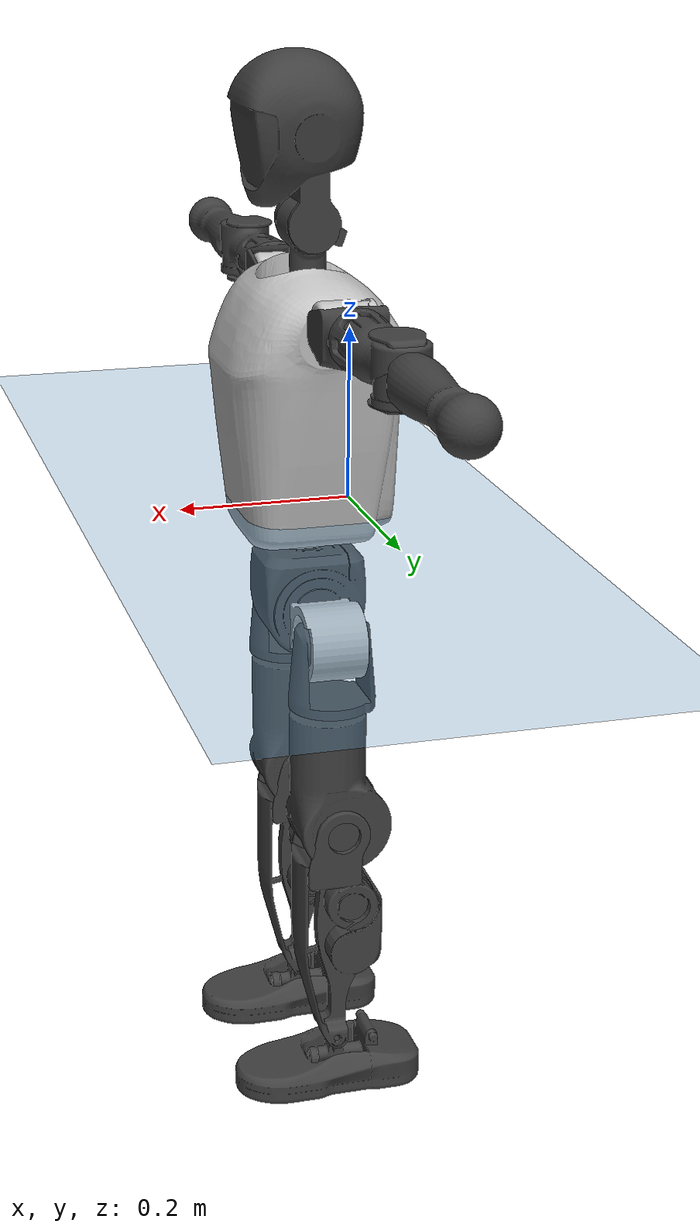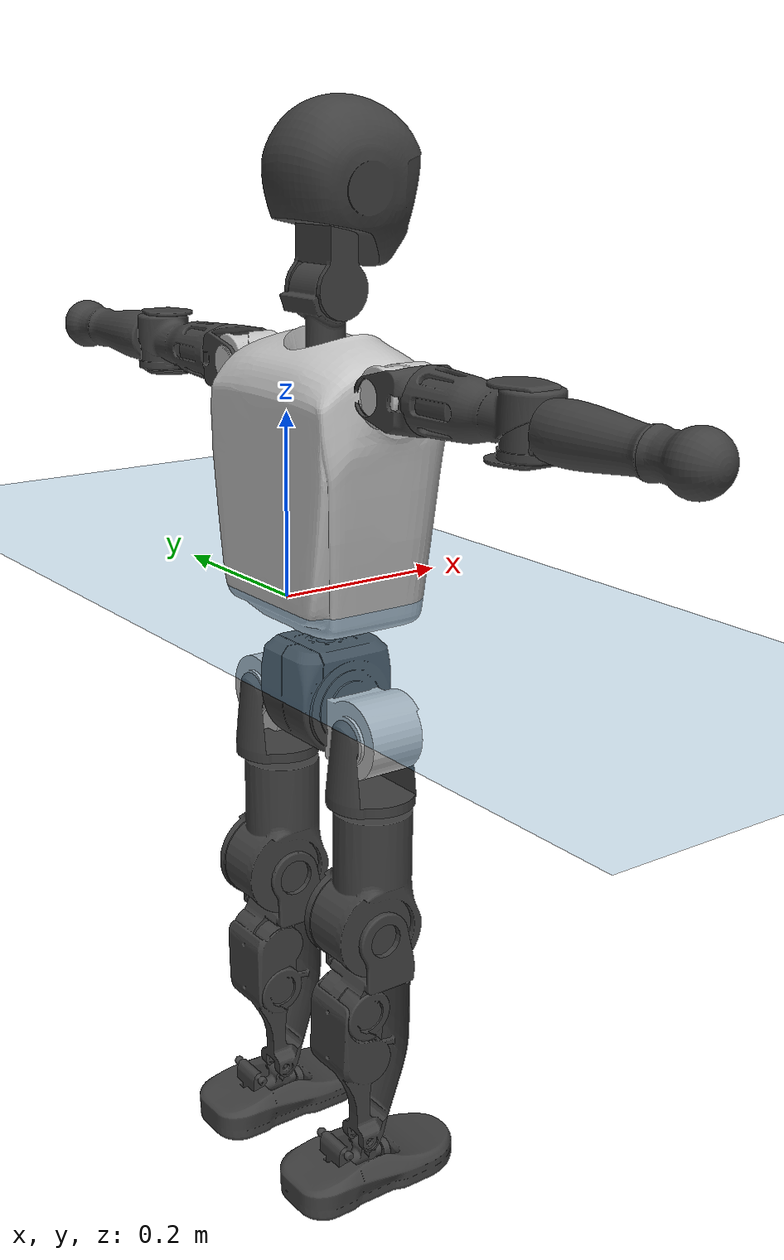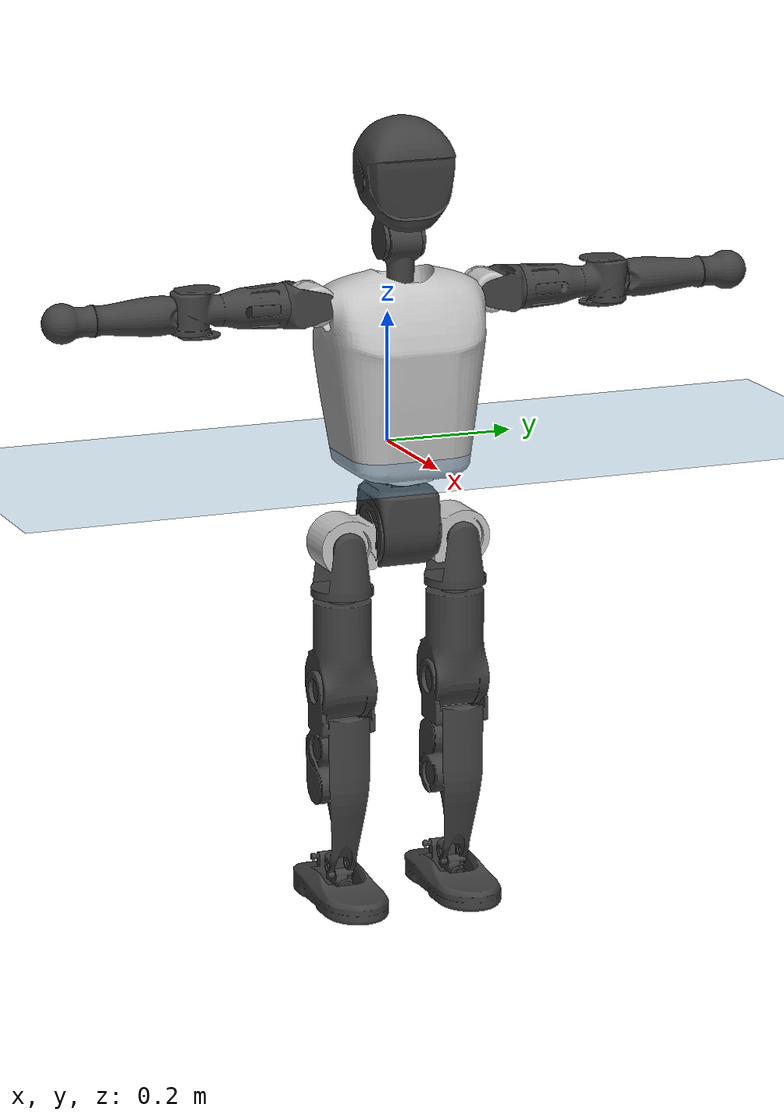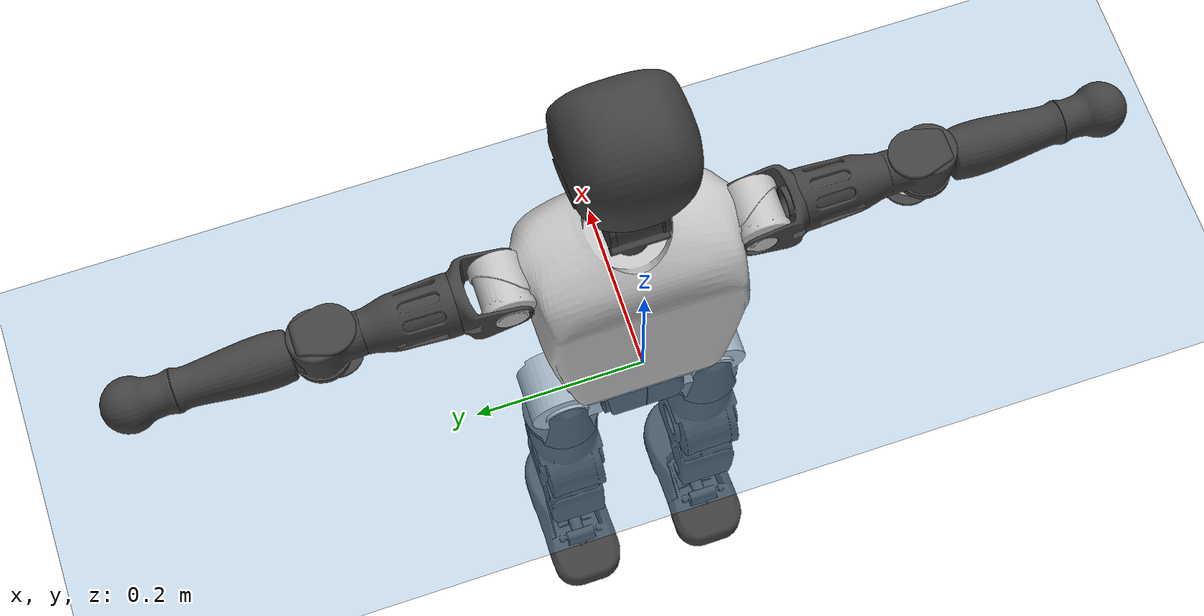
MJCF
<mujoco model="T1">
  <compiler angle="radian" assetdir="assets" balanceinertia="true" inertiafromgeom="false"/>

  <option timestep="0.005" density="1.2" viscosity="2e-05"/>

  <size nkey="1"/>

  <visual>
    <quality shadowsize="8192"/>
    <map shadowclip="0.5"/>
  </visual>

  <default>
    <default class="/">
      <joint armature="0.01" damping="0.01" frictionloss="0.1"/>
      <geom contype="0" conaffinity="0" group="1" solref="-1000 -80"/>
      <site size="0.01 0.005 0.005" group="5"/>
      <general forcelimited="true" biastype="affine" gainprm="25" biasprm="0 -25 -0.6"/>
      <default class="t1">
        <geom rgba="0.25 0.25 0.25 1"/>
        <default class="visual">
          <geom type="mesh" group="2"/>
        </default>
        <default class="collision">
          <geom group="3"/>
        </default>
        <default class="foot">
          <geom size="0.1115 0.05 0.015" type="box" condim="6" group="4" priority="1" solimp="0.015 1 0.015"/>
        </default>
        <default class="reward_collision_sphere">
          <geom group="5" rgba="1 0 0 1"/>
        </default>
      </default>
    </default>
  </default>

  <asset>
    <texture type="skybox" colorspace="auto" name="//unnamed_texture_0" builtin="gradient" rgb1="0.95 0.95 0.95" rgb2="0.95 0.95 0.95" width="100" height="600"/>
    <texture type="2d" colorspace="auto" name="texplane" builtin="checker" rgb1="0.345 0.575 0.748" rgb2="0.345 0.575 0.748" markrgb="1 1 1" width="512" height="512"/>
    <material name="MatPlane" class="/" texture="texplane" texuniform="true" texrepeat="2 2" specular="0.9"/>
    <mesh name="Trunk" class="/" file="Trunk.stl"/>
    <mesh name="H1" class="/" file="H1.stl"/>
    <mesh name="H2" class="/" file="H2.stl"/>
    <mesh name="AL1" class="/" file="AL1.stl"/>
    <mesh name="AL2" class="/" file="AL2.stl"/>
    <mesh name="AL3" class="/" file="AL3.stl"/>
    <mesh name="left_hand_link" class="/" file="left_hand_link.stl"/>
    <mesh name="AR1" class="/" file="AR1.stl"/>
    <mesh name="AR2" class="/" file="AR2.stl"/>
    <mesh name="AR3" class="/" file="AR3.stl"/>
    <mesh name="right_hand_link" class="/" file="right_hand_link.stl"/>
    <mesh name="Waist" class="/" file="Waist.stl"/>
    <mesh name="Hip_Pitch_Left" class="/" file="Hip_Pitch_Left.stl"/>
    <mesh name="Hip_Roll_Left" class="/" file="Hip_Roll_Left.stl"/>
    <mesh name="Hip_Yaw_Left" class="/" file="Hip_Yaw_Left.stl"/>
    <mesh name="Shank_Left" class="/" file="Shank_Left.stl"/>
    <mesh name="Ankle_Cross_Left" class="/" file="Ankle_Cross_Left.stl"/>
    <mesh name="left_foot_link" class="/" file="left_foot_link.stl"/>
    <mesh name="Hip_Pitch_Right" class="/" file="Hip_Pitch_Right.stl"/>
    <mesh name="Hip_Roll_Right" class="/" file="Hip_Roll_Right.stl"/>
    <mesh name="Hip_Yaw_Right" class="/" file="Hip_Yaw_Right.stl"/>
    <mesh name="Shank_Right" class="/" file="Shank_Right.stl"/>
    <mesh name="Ankle_Cross_Right" class="/" file="Ankle_Cross_Right.stl"/>
    <mesh name="right_foot_link" class="/" file="right_foot_link.stl"/>
  </asset>

  <worldbody>
    <geom name="floor" class="/" size="100 100 0.125" type="plane" group="0" material="MatPlane"/>
    <light name="toplight_shadow" class="/" pos="0 0 5" dir="0.0990148 0.0990148 -0.990148" type="directional" ambient="0.04 0.04 0.04" diffuse="0.55 0.55 0.55" specular="0.12 0.12 0.12"/>
    <light name="toplight_fill" class="/" pos="0 0 5" dir="0.0990148 0.0990148 -0.990148" type="directional" castshadow="false" ambient="0.04 0.04 0.04" diffuse="0.3 0.3 0.3" specular="0.08 0.08 0.08"/>
    <body name="trunk" childclass="t1" pos="-0.000146348 6.75054e-05 0.000621019" quat="1 -0.000194847 9.5534e-05 -0.000153956">
      <inertial pos="0.0424683 -0.00126465 0.11165" quat="0.99995 -0.00436449 -0.00899405 9.28198e-05" mass="8.57854" diaginertia="0.0268618 0.0398948 0.0716741"/>
      <joint name="//unnamed_joint_0" type="free" armature="0" damping="0" frictionloss="0"/>
      <geom name="//unnamed_geom_1" class="visual" rgba="0.76 0.76 0.76 1" mesh="Trunk"/>
      <geom name="//unnamed_geom_2" class="collision" size="0.0679695 0.090626 0.135939" pos="0.0469897 0 0.126931" type="box"/>
      <geom name="//unnamed_geom_3" class="reward_collision_sphere" size="0.10422" pos="0.0469897 0 0.105776"/>
      <geom name="//unnamed_geom_4" class="reward_collision_sphere" size="0.0135939" pos="0.0469897 0.0746184 0"/>
      <geom name="//unnamed_geom_5" class="reward_collision_sphere" size="0.0135939" pos="0.0469897 -0.0746184 0"/>
      <geom name="//unnamed_geom_6" class="reward_collision_sphere" size="0.0135939" pos="0.0469897 0.0939314 0.190396"/>
      <geom name="//unnamed_geom_7" class="reward_collision_sphere" size="0.0135939" pos="0.0469897 -0.0939314 0.190396"/>
      <site name="imu" pos="0.00969312 -0.0061897 -0.00495248" size="0.0090626"/>
      <camera name="track" pos="0 -1.75573 0" quat="0.707107 0.707107 0 0" mode="trackcom"/>
      <camera name="ego_camera" pos="0.0955457 0 0.444257" quat="-0.5 -0.5 0.5 0.5"/>
      <body name="H1" pos="0.0495101 0.000156487 0.256791" quat="1 -0.000195054 0.00035157 -7.56698e-05">
        <inertial pos="-0.00113801 -0.00129126 0.0606857" quat="0.765856 -0.0136802 0.00323011 0.642859" mass="0.33562" diaginertia="7.217e-05 0.000116705 0.00020206"/>
        <joint name="AAHead_yaw" pos="0 0 0" axis="-2.26887e-05 -0.000972334 1" stiffness="0.0044398" range="-1.58928 1.56303" armature="0.00895691" damping="0.00740469" frictionloss="0.0931578"/>
        <geom name="//unnamed_geom_8" class="visual" mesh="H1"/>
        <body name="H2" pos="-0.000664531 -0.00170782 0.0649308" quat="1 0.00016597 -2.48211e-05 -7.16368e-05">
          <inertial pos="0.0072228 0.00228342 0.103988" quat="0.98809 0.109076 -0.0772055 -0.0762888" mass="0.480583" diaginertia="0.00059213 0.00101287 0.00226988"/>
          <joint name="Head_pitch" pos="0 0 0" axis="0.00134854 -0.999998 0.00164529" range="-1.22456 0.347968" armature="0.0085468" damping="0.00680474" frictionloss="0.0901523"/>
          <geom name="//unnamed_geom_9" class="visual" mesh="H2"/>
          <geom name="//unnamed_geom_10" class="collision" size="0.0725008" pos="0.00783162 0 0.116353"/>
          <geom name="//unnamed_geom_11" class="reward_collision_sphere" size="0.0815634" pos="0.0156632 0 0.105776"/>
        </body>
      </body>
      <body name="AL1" pos="0.0462595 0.0943682 0.232549" quat="1 -0.000258502 0.000424943 -0.000249378">
        <inertial pos="-0.00168865 0.0383134 0.00146703" quat="0.503422 0.495978 -0.501743 0.498825" mass="0.394152" diaginertia="0.00040007 0.000672603 0.000381383"/>
        <joint name="Left_Shoulder_Pitch" pos="0 0 0" axis="0.00312551 0.999992 -0.00240296" range="-3.33523 1.22395" armature="0.00906846" damping="0.01212" frictionloss="0.0900328"/>
        <geom name="//unnamed_geom_12" class="visual" rgba="0.76 0.76 0.76 1" mesh="AL1"/>
        <body name="AL2" pos="-6.27645e-05 0.0438544 -0.000535024" quat="0.999999 -0.00078498 0.000111125 0.000780488">
          <inertial pos="0.00162324 0.0335071 -0.000611117" quat="0.487213 0.512582 -0.488956 0.51069" mass="0.124597" diaginertia="0.000119821 0.000184943 0.000238259"/>
          <joint name="Left_Shoulder_Roll" pos="0 0 0" axis="-0.999986 -0.0049396 0.00206448" range="-1.56833 1.73232" armature="0.00868582" damping="0.00114136" frictionloss="0.0948624"/>
          <geom name="//unnamed_geom_13" class="visual" mesh="AL2"/>
          <body name="AL3" pos="0.000157507 0.0551358 0.000332147" quat="1 -0.000610315 4.42086e-05 0.000661018">
            <inertial pos="0.000293838 0.0753225 -0.000442686" quat="0.705214 0.708984 0.00251927 0.00283324" mass="0.773263" diaginertia="0.0038473 0.00680787 0.000847241"/>
            <joint name="Left_Elbow_Pitch" pos="0 0 0" axis="3.12684e-05 -0.999999 0.00114401" range="-2.25479 2.26208" armature="0.00900823" damping="0.0120668" frictionloss="0.0891154"/>
            <geom name="//unnamed_geom_14" class="visual" mesh="AL3"/>
            <geom name="//unnamed_geom_15" class="collision" size="0.0271878 0.0679695" pos="0 0.0438932 0" quat="0.707105 0.707108 0 0" type="cylinder"/>
            <geom name="//unnamed_geom_16" class="reward_collision_sphere" size="0.0326254"/>
            <body name="left_hand_link" pos="0.000219498 0.131464 0.000694981" quat="1 0.000178618 -0.000301912 0.000711173">
              <inertial pos="-0.000332618 0.0971323 -0.000874719" quat="0.70704 0.707142 -0.00222596 -0.00622278" mass="0.237861" diaginertia="0.00231742 0.00411793 0.000280322"/>
              <joint name="Left_Elbow_Yaw" pos="0 0 0" axis="0.00856366 0.00202124 0.999961" range="-2.44525 0.0108645" armature="0.00917921" damping="0.0111629" frictionloss="0.0993682"/>
              <geom name="//unnamed_geom_17" class="visual" mesh="left_hand_link"/>
              <geom name="//unnamed_geom_18" class="collision" size="0.0271878 0.0792978" pos="0 0.114122 0" quat="0.707105 0.707108 0 0" type="cylinder"/>
              <geom name="//unnamed_geom_19" class="reward_collision_sphere" size="0.045313"/>
              <geom name="//unnamed_geom_20" class="reward_collision_sphere" size="0.0317191" pos="0 0.096565 0"/>
              <geom name="//unnamed_geom_21" class="reward_collision_sphere" size="0.0317191" pos="0 0.188741 0"/>
            </body>
          </body>
        </body>
      </body>
      <body name="AR1" pos="0.0434645 -0.0919644 0.231645" quat="1 -6.14665e-05 0.000405995 -3.90462e-05">
        <inertial pos="-0.000497513 -0.0394227 0.000412083" quat="0.504117 0.496292 -0.505105 0.494397" mass="0.387467" diaginertia="0.000400064 0.000672731 0.000385779"/>
        <joint name="Right_Shoulder_Pitch" pos="0 0 0" axis="-0.00182884 -0.999983 0.00561713" stiffness="0.0104373" range="-1.19351 3.30204" armature="0.00910996" damping="0.0128343" frictionloss="0.0896816"/>
        <geom name="//unnamed_geom_22" class="visual" rgba="0.76 0.76 0.76 1" mesh="AR1"/>
        <body name="AR2" pos="-0.00197885 -0.0396755 -3.63151e-05" quat="1 1.75477e-06 -4.53559e-05 0.00025656">
          <inertial pos="0.00333631 -0.0343312 0.000345487" quat="0.510138 0.490262 -0.510677 0.488479" mass="0.118194" diaginertia="0.000114677 0.000173393 0.000232578"/>
          <joint name="Right_Shoulder_Roll" pos="0 0 0" axis="-0.999984 0.00294772 -0.00485072" range="-1.75542 1.53971" armature="0.0089139" damping="0.00513582" frictionloss="0.0841496"/>
          <geom name="//unnamed_geom_23" class="visual" mesh="AR2"/>
          <body name="AR3" pos="0.000507079 -0.0512789 0.00087012" quat="1 3.05719e-05 1.21417e-05 -0.000222262">
            <inertial pos="-0.000465685 -0.0744919 0.000181357" quat="0.701127 0.713022 0.0044077 0.000976754" mass="0.769146" diaginertia="0.00383961 0.00667073 0.000828104"/>
            <joint name="Right_Elbow_Pitch" pos="0 0 0" axis="0.000967699 0.999999 -0.000723835" stiffness="0.00556058" range="-2.27295 2.27087" armature="0.00896637" damping="0.00633926" frictionloss="0.0982274"/>
            <geom name="//unnamed_geom_24" class="visual" mesh="AR3"/>
            <geom name="//unnamed_geom_25" class="collision" size="0.0271878 0.0679695" pos="0 -0.0438932 0" quat="0.707105 0.707108 0 0" type="cylinder"/>
            <geom name="//unnamed_geom_26" class="reward_collision_sphere" size="0.0326254"/>
            <body name="right_hand_link" pos="-0.00172813 -0.129687 -0.00120066" quat="1 -0.000130817 -0.000224901 0.00013816">
              <inertial pos="-0.000409928 -0.0962053 0.00239234" quat="0.703842 0.710333 -0.00168233 0.00555567" mass="0.238715" diaginertia="0.00235616 0.00412559 0.00027832"/>
              <joint name="Right_Elbow_Yaw" pos="0 0 0" axis="0.00146504 -0.00379838 0.999992" range="-0.015564 2.43525" armature="0.0100055" damping="0.00567609" frictionloss="0.0908478"/>
              <geom name="//unnamed_geom_27" class="visual" mesh="right_hand_link"/>
              <geom name="//unnamed_geom_28" class="collision" size="0.0271878 0.0792978" pos="0 -0.114122 0" quat="0.707105 0.707108 0 0" type="cylinder"/>
              <geom name="//unnamed_geom_29" class="reward_collision_sphere" size="0.045313"/>
              <geom name="//unnamed_geom_30" class="reward_collision_sphere" size="0.0317191" pos="0 -0.096565 0"/>
              <geom name="//unnamed_geom_31" class="reward_collision_sphere" size="0.0317191" pos="0 -0.188741 0"/>
            </body>
          </body>
        </body>
      </body>
      <body name="Waist" pos="0.0490758 -0.00227604 -0.122624" quat="1 1.47812e-05 0.000106589 -8.98826e-05">
        <inertial pos="0.0031067 -0.000249191 0.00834362" quat="0.984133 0.00294767 -0.177319 0.00564373" mass="1.90149" diaginertia="0.00156968 0.00268432 0.00624889"/>
        <joint name="Waist" pos="0 0 0" axis="0.00337905 -0.00084895 0.999994" range="-1.53146 1.55095" armature="0.00862847" damping="0.0108781" frictionloss="0.0882291"/>
        <geom name="//unnamed_geom_32" class="visual" mesh="Waist"/>
        <body name="Hip_Pitch_Left" pos="-0.000897953 0.0935737 0.000137608" quat="1 9.85336e-05 -7.1035e-05 -0.000691398">
          <inertial pos="0.00109414 -0.00482551 -0.0194792" quat="0.975077 0.221387 0.0144562 0.00210017" mass="0.763181" diaginertia="0.000531716 0.000783466 0.00166514"/>
          <joint name="Left_Hip_Pitch" pos="0 0 0" axis="0.000190674 1 7.18769e-05" range="-1.80086 1.56741" armature="0.00907311" damping="0.0050793" frictionloss="0.0907451"/>
          <geom name="//unnamed_geom_33" class="visual" rgba="0.76 0.76 0.76 1" mesh="Hip_Pitch_Left"/>
          <body name="Hip_Roll_Left" pos="-0.000431728 3.18081e-05 -0.0207346" quat="1 -2.17162e-05 -0.000116866 0.000327934">
            <inertial pos="0.00156264 0.000196087 -0.0559318" quat="0.707035 -0.00476564 -0.00499765 0.707145" mass="0.28531" diaginertia="0.000510156 0.00077584 0.000669977"/>
            <joint name="Left_Hip_Roll" pos="0 0 0" axis="-0.999993 0.000559589 0.00366331" range="-1.58018 0.215515" armature="0.00906446" damping="0.00778228" frictionloss="0.093508"/>
            <geom name="//unnamed_geom_34" class="visual" mesh="Hip_Roll_Left"/>
            <geom name="//unnamed_geom_35" class="reward_collision_sphere" size="0.0498443"/>
            <body name="Hip_Yaw_Left" pos="0.0018524 -0.00129203 -0.0872773" quat="1 8.14456e-06 4.69544e-05 -0.000194937">
              <inertial pos="-0.00578232 -2.76398e-06 -0.0940029" quat="0.691717 -0.0316328 -0.0259322 0.72101" mass="1.62903" diaginertia="0.00761626 0.0128563 0.00339807"/>
              <joint name="Left_Hip_Yaw" pos="0 0 0" axis="-0.00182502 -0.00260509 -0.999995" range="-1.01069 1.01517" armature="0.00907287" damping="0.015461" frictionloss="0.0908633"/>
              <geom name="//unnamed_geom_36" class="visual" mesh="Hip_Yaw_Left"/>
              <geom name="//unnamed_geom_37" class="collision" size="0.045313 0.0725008" type="cylinder"/>
              <body name="Shank_Left" pos="-0.00879792 0.000260315 -0.141403" quat="1 0.000269288 0.000102473 0.000134205">
                <inertial pos="-0.00437512 -0.000340046 -0.13123" quat="0.997563 -0.000431667 -0.0257897 0.0648288" mass="1.26613" diaginertia="0.010254 0.0178526 0.00243991"/>
                <joint name="Left_Knee_Pitch" pos="0 0 0" axis="0.00468368 0.999987 -0.00223041" range="-0.0187533 2.34588" armature="0.00882993" damping="0.00684639" frictionloss="0.0954843"/>
                <geom name="//unnamed_geom_38" class="visual" mesh="Shank_Left"/>
                <geom name="//unnamed_geom_39" class="collision" size="0.045313 0.0679695" pos="0 0 -0.126931" type="cylinder"/>
                <geom name="//unnamed_geom_40" class="reward_collision_sphere" size="0.0589069"/>
                <body name="Ankle_Cross_Left" pos="-0.000206149 0.000137669 -0.296627" quat="1 -0.000175414 0.000163754 -0.00013639">
                  <inertial pos="-0.00315073 -0.000582592 -0.0104895" quat="0.447085 0.548724 0.549848 0.443491" mass="0.0554649" diaginertia="8.81437e-06 1.36144e-05 1.53738e-05"/>
                  <joint name="Left_Ankle_Pitch" pos="0 0 0" axis="0.0028018 0.999996 0.000971908" stiffness="0.00233013" range="-0.910729 0.338479" armature="0.00941341" damping="0.00299585" frictionloss="0.0960971"/>
                  <geom name="//unnamed_geom_41" class="visual" mesh="Ankle_Cross_Left"/>
                  <body name="left_foot_link" pos="-0.000107891 -0.00012558 -0.0149615" quat="1 0.000100119 0.000346111 -0.000144004">
                    <inertial pos="0.000617057 -0.00146357 -0.00982829" quat="5.34052e-05 0.621429 0.00025409 0.78347" mass="0.51534" diaginertia="0.000794488 0.00124432 0.00286618"/>
                    <joint name="Left_Ankle_Roll" pos="0 0 0" axis="-0.999997 -0.002115 0.000842141" range="-0.437611 0.460079" armature="0.00897498" damping="0.0153365" frictionloss="0.0929714"/>
                    <geom name="//unnamed_geom_42" class="visual" mesh="left_foot_link"/>
                    <geom name="left_foot" class="foot" size="0.10058 0.0492132 0.0135572" pos="0.00783162 0 -0.0158663"/>
                    <geom name="//unnamed_geom_44" class="reward_collision_sphere" size="0.0471255" pos="0.00783162 0 -0.0158663"/>
                    <geom name="//unnamed_geom_45" class="reward_collision_sphere" size="0.0271878" pos="0.0744004 -0.0201909 -0.0158663"/>
                    <geom name="//unnamed_geom_46" class="reward_collision_sphere" size="0.0271878" pos="-0.0548213 -0.0201909 -0.0158663"/>
                    <site name="left_foot" class="foot" pos="0.00783162 0 -0.0158663" size="0.0090626"/>
                  </body>
                </body>
              </body>
            </body>
          </body>
        </body>
        <body name="Hip_Pitch_Right" pos="0.000820245 -0.092344 0.000552938" quat="1 5.31448e-05 3.92443e-05 -1.24886e-05">
          <inertial pos="0.000215928 0.0057586 -0.0172023" quat="0.973241 -0.229481 0.0118629 0.000222005" mass="0.754651" diaginertia="0.000527523 0.000757344 0.00165332"/>
          <joint name="Right_Hip_Pitch" pos="0 0 0" axis="0.000786106 -0.999999 -0.000900016" range="-1.56696 1.79158" armature="0.00945753" damping="0.0106652" frictionloss="0.087844"/>
          <geom name="//unnamed_geom_47" class="visual" rgba="0.76 0.76 0.76 1" mesh="Hip_Pitch_Right"/>
          <body name="Hip_Roll_Right" pos="-0.00150829 0.000930657 -0.0217238" quat="0.999999 0.000710606 -0.000890709 0.000267005">
            <inertial pos="0.00320013 -0.000821433 -0.0566991" quat="0.708889 -0.00671412 -0.00393824 0.705277" mass="0.285624" diaginertia="0.000511048 0.000782823 0.000678211"/>
            <joint name="Right_Hip_Roll" pos="0 0 0" axis="-0.999995 -0.00189322 -0.0024374" range="-0.195992 1.58422" armature="0.0093357" damping="0.00766541" frictionloss="0.0907858"/>
            <geom name="//unnamed_geom_48" class="visual" mesh="Hip_Roll_Right"/>
            <geom name="//unnamed_geom_49" class="reward_collision_sphere" size="0.0498443"/>
            <body name="Hip_Yaw_Right" pos="0.000321572 -0.000364046 -0.086514" quat="1 -0.000752718 -0.000570119 4.2169e-05">
              <inertial pos="-0.00558892 -0.000454219 -0.0952431" quat="0.714842 -0.03116 -0.0336426 0.697781" mass="1.62162" diaginertia="0.00785006 0.0137674 0.00345463"/>
              <joint name="Right_Hip_Yaw" pos="0 0 0" axis="0.00185475 0.00138774 -0.999997" range="-0.996559 0.96652" armature="0.00914742" damping="0.0113142" frictionloss="0.0841063"/>
              <geom name="//unnamed_geom_50" class="visual" mesh="Hip_Yaw_Right"/>
              <geom name="//unnamed_geom_51" class="collision" size="0.045313 0.0725008" type="cylinder"/>
              <body name="Shank_Right" pos="-0.0120692 -0.000535718 -0.141708" quat="1 0.000425436 0.000359843 -0.000255838">
                <inertial pos="-0.00363557 -0.000710401 -0.129775" quat="0.999272 -0.00044794 -0.0221356 -0.0310657" mass="1.35934" diaginertia="0.0103892 0.0178839 0.00257604"/>
                <joint name="Right_Knee_Pitch" pos="0 0 0" axis="5.08059e-05 -0.999988 0.004842" range="-2.32691 0.00283769" armature="0.00931438" damping="0.00589985" frictionloss="0.0862543"/>
                <geom name="//unnamed_geom_52" class="visual" mesh="Shank_Right"/>
                <geom name="//unnamed_geom_53" class="collision" size="0.045313 0.0679695" pos="0 0 -0.126931" type="cylinder"/>
                <geom name="//unnamed_geom_54" class="reward_collision_sphere" size="0.0589069"/>
                <body name="Ankle_Cross_Right" pos="0.00183559 -0.000881776 -0.296569" quat="1 0.000313482 -0.000545929 -0.000141992">
                  <inertial pos="-0.00277894 0.000358305 -0.00879143" quat="0.443211 0.55243 0.547283 0.445944" mass="0.0533721" diaginertia="8.53513e-06 1.33262e-05 1.48981e-05"/>
                  <joint name="Right_Ankle_Pitch" pos="0 0 0" axis="0.00341298 -0.999935 0.0108687" range="-0.354799 0.867052" armature="0.00936353" damping="0.00611534" frictionloss="0.0816247"/>
                  <geom name="//unnamed_geom_55" class="visual" mesh="Ankle_Cross_Right"/>
                  <body name="right_foot_link" pos="0.00100848 -0.000396323 -0.0133659" quat="1 -0.00028241 0.000198488 5.92494e-05">
                    <inertial pos="-0.000593384 6.07568e-05 -0.0106815" quat="0.00119366 0.621668 0.000474075 0.78328" mass="0.509548" diaginertia="0.000785471 0.00123591 0.00289313"/>
                    <joint name="Right_Ankle_Roll" pos="0 0 0" axis="-0.999985 0.000710786 -0.00540507" range="-0.398296 0.422213" armature="0.00887727" damping="0.00903733" frictionloss="0.0929584"/>
                    <geom name="//unnamed_geom_56" class="visual" mesh="right_foot_link"/>
                    <geom name="right_foot" class="foot" size="0.0923147 0.0454034 0.0136597" pos="0.00783162 0 -0.0158663"/>
                    <geom name="//unnamed_geom_58" class="reward_collision_sphere" size="0.0362504"/>
                    <geom name="//unnamed_geom_59" class="reward_collision_sphere" size="0.0271878" pos="0.00783162 0 -0.0158663"/>
                    <geom name="//unnamed_geom_60" class="reward_collision_sphere" size="0.0271878" pos="0.0744004 0.0201909 -0.0158663"/>
                    <geom name="//unnamed_geom_61" class="reward_collision_sphere" size="0.0271878" pos="-0.0548213 0.0201909 -0.0158663"/>
                    <site name="right_foot" class="foot" pos="0.00783162 0 -0.0158663" size="0.0090626"/>
                  </body>
                </body>
              </body>
            </body>
          </body>
        </body>
      </body>
    </body>
  </worldbody>

  <contact>
    <pair class="/" geom1="floor" geom2="left_foot" name="//unnamed_contact_0"/>
    <pair class="/" geom1="floor" geom2="right_foot" name="//unnamed_contact_1"/>
  </contact>

  <actuator>
    <general name="AAHead_yaw" class="/" joint="AAHead_yaw" forcerange="-6.56271 6.56271" gainprm="22.9791" biasprm="0 -22.9791 -0.514745"/>
    <general name="Head_pitch" class="/" joint="Head_pitch" forcerange="-6.45585 6.45585" gainprm="22.9791" biasprm="0 -22.9791 -0.514745"/>
    <general name="Left_Shoulder_Pitch" class="/" joint="Left_Shoulder_Pitch" forcerange="-16.4851 16.4851" gainprm="22.9791" biasprm="0 -22.9791 -0.514745"/>
    <general name="Left_Shoulder_Roll" class="/" joint="Left_Shoulder_Roll" forcerange="-16.2252 16.2252" gainprm="22.9791" biasprm="0 -22.9791 -0.514745"/>
    <general name="Left_Elbow_Pitch" class="/" joint="Left_Elbow_Pitch" forcerange="-16.9507 16.9507" gainprm="22.9791" biasprm="0 -22.9791 -0.514745"/>
    <general name="Left_Elbow_Yaw" class="/" joint="Left_Elbow_Yaw" forcerange="-16.313 16.313" gainprm="22.9791" biasprm="0 -22.9791 -0.514745"/>
    <general name="Right_Shoulder_Pitch" class="/" joint="Right_Shoulder_Pitch" forcerange="-16.3346 16.3346" gainprm="22.9791" biasprm="0 -22.9791 -0.514745"/>
    <general name="Right_Shoulder_Roll" class="/" joint="Right_Shoulder_Roll" forcerange="-16.4032 16.4032" gainprm="22.9791" biasprm="0 -22.9791 -0.514745"/>
    <general name="Right_Elbow_Pitch" class="/" joint="Right_Elbow_Pitch" forcerange="-16.7413 16.7413" gainprm="22.9791" biasprm="0 -22.9791 -0.514745"/>
    <general name="Right_Elbow_Yaw" class="/" joint="Right_Elbow_Yaw" forcerange="-16.8689 16.8689" gainprm="22.9791" biasprm="0 -22.9791 -0.514745"/>
    <general name="Waist" class="/" joint="Waist" forcerange="-26.4115 26.4115" gainprm="22.9791" biasprm="0 -22.9791 -0.514745"/>
    <general name="Left_Hip_Pitch" class="/" joint="Left_Hip_Pitch" forcerange="-37.6103 37.6103" gainprm="22.9791" biasprm="0 -22.9791 -0.514745"/>
    <general name="Left_Hip_Roll" class="/" joint="Left_Hip_Roll" forcerange="-27.0382 27.0382" gainprm="22.9791" biasprm="0 -22.9791 -0.514745"/>
    <general name="Left_Hip_Yaw" class="/" joint="Left_Hip_Yaw" forcerange="-26.3067 26.3067" gainprm="22.9791" biasprm="0 -22.9791 -0.514745"/>
    <general name="Left_Knee_Pitch" class="/" joint="Left_Knee_Pitch" forcerange="-56.1491 56.1491" gainprm="22.9791" biasprm="0 -22.9791 -0.514745"/>
    <general name="Left_Ankle_Pitch" class="/" joint="Left_Ankle_Pitch" forcerange="-18.2497 18.2497" gainprm="22.9791" biasprm="0 -22.9791 -0.514745"/>
    <general name="Left_Ankle_Roll" class="/" joint="Left_Ankle_Roll" forcerange="-13.4606 13.4606" gainprm="22.9791" biasprm="0 -22.9791 -0.514745"/>
    <general name="Right_Hip_Pitch" class="/" joint="Right_Hip_Pitch" forcerange="-43.3971 43.3971" gainprm="22.9791" biasprm="0 -22.9791 -0.514745"/>
    <general name="Right_Hip_Roll" class="/" joint="Right_Hip_Roll" forcerange="-26.8562 26.8562" gainprm="22.9791" biasprm="0 -22.9791 -0.514745"/>
    <general name="Right_Hip_Yaw" class="/" joint="Right_Hip_Yaw" forcerange="-26.3166 26.3166" gainprm="22.9791" biasprm="0 -22.9791 -0.514745"/>
    <general name="Right_Knee_Pitch" class="/" joint="Right_Knee_Pitch" forcerange="-53.4568 53.4568" gainprm="22.9791" biasprm="0 -22.9791 -0.514745"/>
    <general name="Right_Ankle_Pitch" class="/" joint="Right_Ankle_Pitch" forcerange="-18.7556 18.7556" gainprm="22.9791" biasprm="0 -22.9791 -0.514745"/>
    <general name="Right_Ankle_Roll" class="/" joint="Right_Ankle_Roll" forcerange="-12.7394 12.7394" gainprm="22.9791" biasprm="0 -22.9791 -0.514745"/>
  </actuator>

  <sensor>
    <gyro site="imu" name="imu_angular_velocity"/>
    <velocimeter site="imu" name="imu_linear_velocity"/>
    <framelinvel objtype="site" objname="left_foot" name="left_foot_global_linear_velocity"/>
    <framelinvel objtype="site" objname="right_foot" name="right_foot_global_linear_velocity"/>
  </sensor>

  <keyframe>
    <key name="home" qpos="0 0 0.6385 1 0 0 0 0 0 0 1.4 0 -0.4 0 -1.4 0 0.4 0 -0.4 0 0 0.8 -0.4 0 0.4 0 0 -0.8 0.4 0"/>
  </keyframe>
</mujoco>
